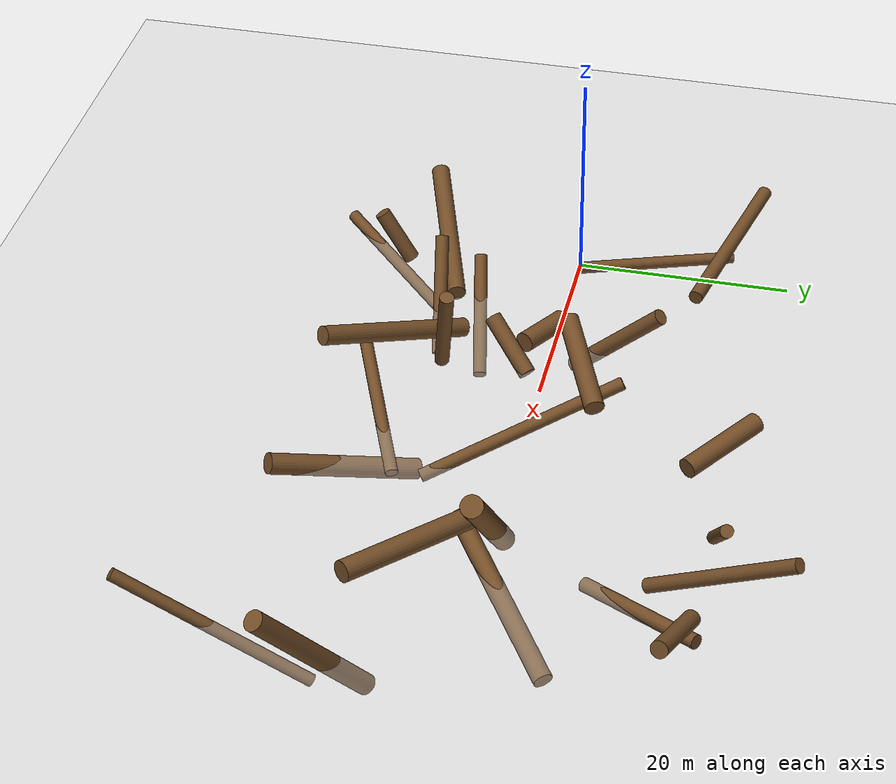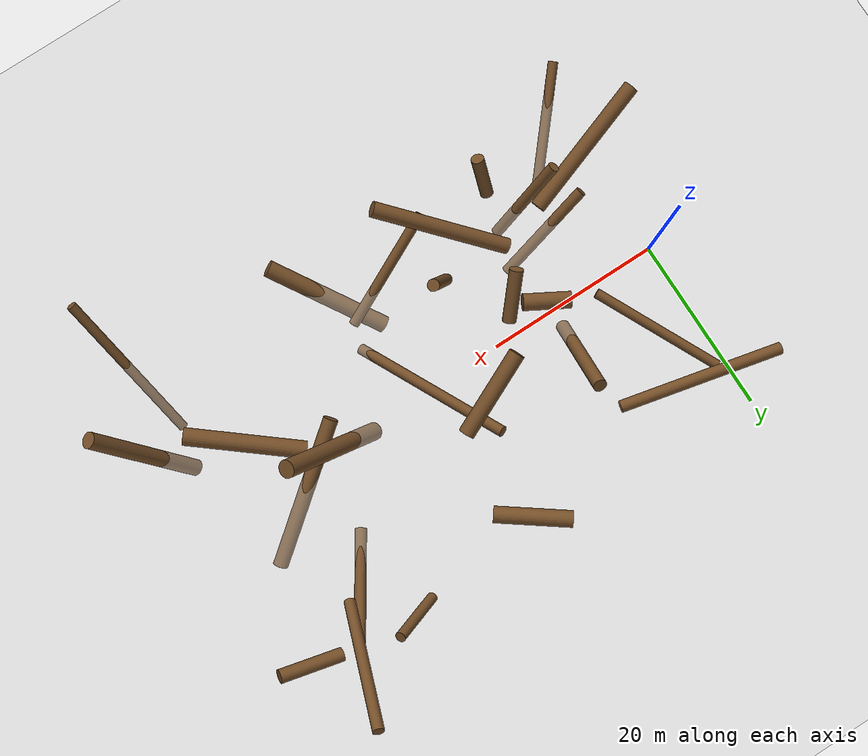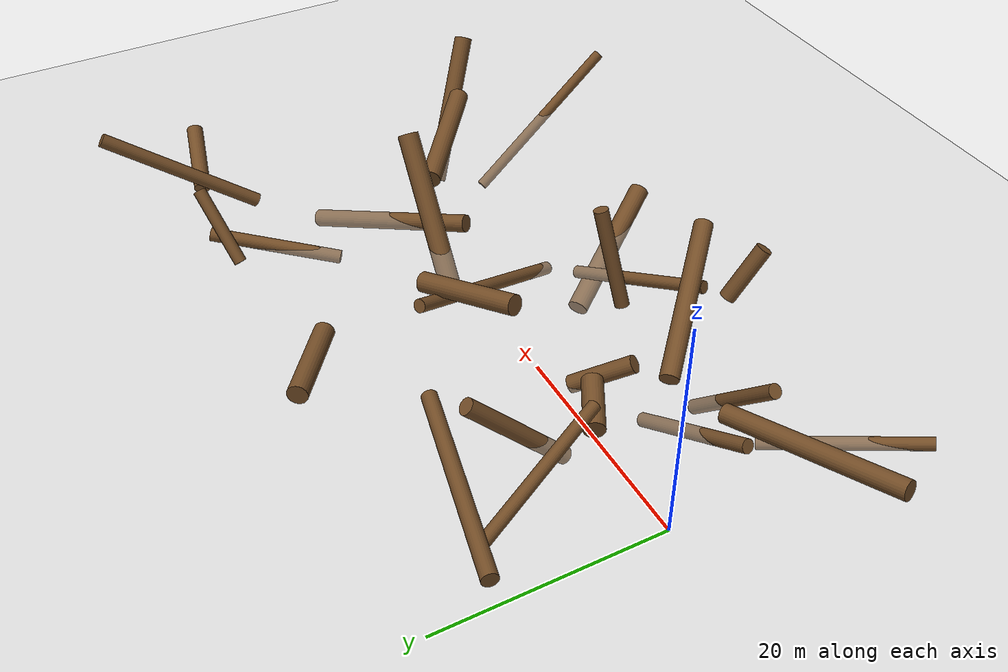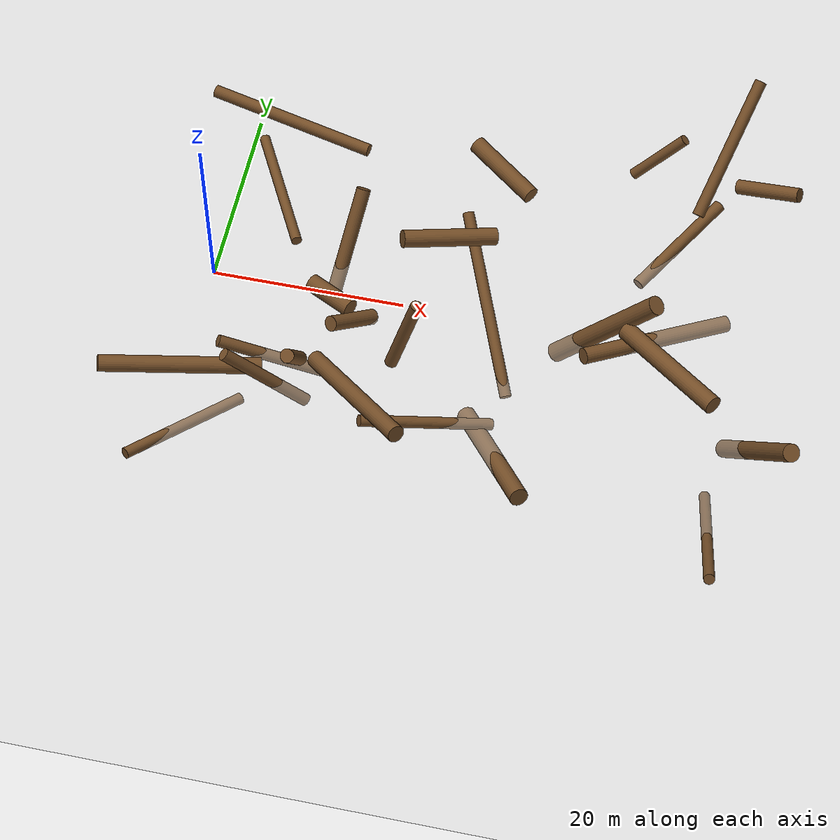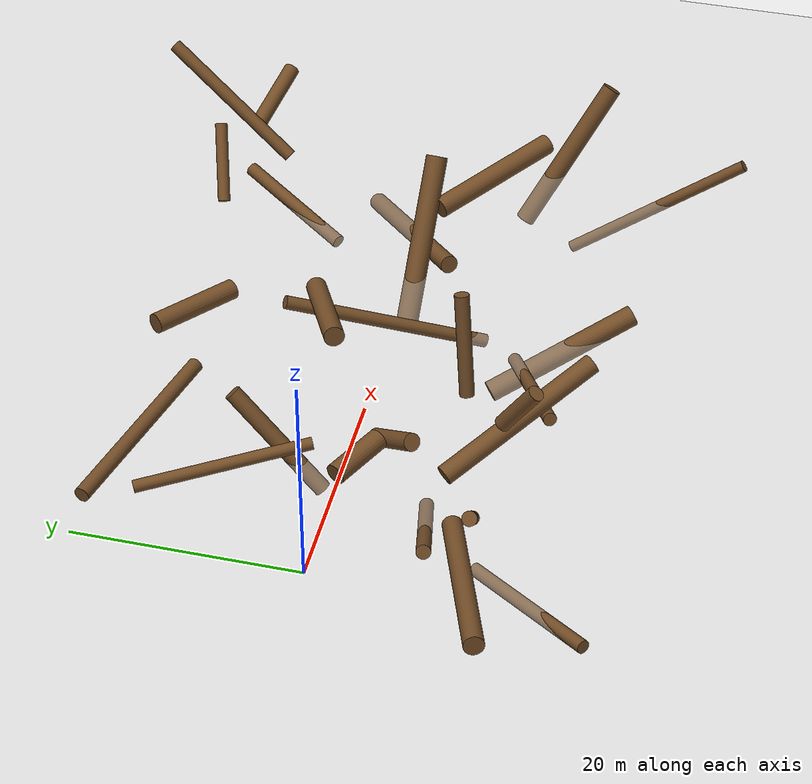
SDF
<sdf version='1.7'>
            <world name='default'>
                <light name='sun' type='directional'>
                <cast_shadows>1</cast_shadows>
                <pose>0 0 10 0 -0 0</pose>
                <diffuse>0.8 0.8 0.8 1</diffuse>
                <specular>0.2 0.2 0.2 1</specular>
                <attenuation>
                    <range>1000</range>
                    <constant>0.9</constant>
                    <linear>0.01</linear>
                    <quadratic>0.001</quadratic>
                </attenuation>
                <direction>-0.5 0.1 -0.9</direction>
                <spot>
                    <inner_angle>0</inner_angle>
                    <outer_angle>0</outer_angle>
                    <falloff>0</falloff>
                </spot>
                </light>
                <model name='ground_plane'>
                <static>1</static>
                <link name='link'>
                    <collision name='collision'>
                    <geometry>
                        <plane>
                        <normal>0 0 1</normal>
                        <size>100 100</size>
                        </plane>
                    </geometry>
                    <surface>
                        <contact>
                        <collide_bitmask>65535</collide_bitmask>
                        <ode/>
                        </contact>
                        <friction>
                        <ode>
                            <mu>100</mu>
                            <mu2>50</mu2>
                        </ode>
                        <torsional>
                            <ode/>
                        </torsional>
                        </friction>
                        <bounce/>
                    </surface>
                    <max_contacts>10</max_contacts>
                    </collision>
                    <visual name='visual'>
                    <cast_shadows>0</cast_shadows>
                    <geometry>
                        <plane>
                        <normal>0 0 1</normal>
                        <size>100 100</size>
                        </plane>
                    </geometry>
                    <material>
                        <script>
                        <uri>file://media/materials/scripts/gazebo.material</uri>
                        <name>Gazebo/Grey</name>
                        </script>
                    </material>
                    </visual>
                    <self_collide>0</self_collide>
                    <enable_wind>0</enable_wind>
                    <kinematic>0</kinematic>
                </link>
                </model>
                <gravity>0 0 -9.8</gravity>
                <magnetic_field>6e-06 2.3e-05 -4.2e-05</magnetic_field>
                <atmosphere type='adiabatic'/>
                <physics type='ode'>
                <max_step_size>0.001</max_step_size>
                <real_time_factor>1</real_time_factor>
                <real_time_update_rate>1000</real_time_update_rate>
                </physics>
                <scene>
                <ambient>0.4 0.4 0.4 1</ambient>
                <background>0.7 0.7 0.7 1</background>
                <shadows>1</shadows>
                </scene>
                <wind/>
                <spherical_coordinates>
                <surface_model>EARTH_WGS84</surface_model>
                <latitude_deg>0</latitude_deg>
                <longitude_deg>0</longitude_deg>
                <elevation>0</elevation>
                <heading_deg>0</heading_deg>
                </spherical_coordinates>
                <model name='cylinder_1'>
      <static>1</static>
      <link name='link'>
        <pose frame=''>0 0 0.1 0 -0 0</pose>
        <collision name='collision_trunk'>
          <pose frame=''>0 0 2 0 -0 0</pose>
          <geometry>
            <cylinder>
              <radius>0.5336957871509185</radius>
              <length>14.95655123803418</length>
            </cylinder>
          </geometry>
        </collision>
        <visual name='trunk'>
          <pose frame=''>0 0 2 0 -0 0</pose>
          <geometry>
            <cylinder>
              <radius>0.5336957871509185</radius>
              <length>14.95655123803418</length>
            </cylinder>
          </geometry>
          <material>
            <script>
              <uri>model://tree_simple/scripts</uri>
              <uri>model://tree_simple/materials/textures</uri>
              <name>TreeSimple/Trunk</name>
            </script>
          </material>
        </visual>
        <self_collide>0</self_collide>
        <kinematic>0</kinematic>
      </link>
      <pose frame=''>4.389438865366204 9.983459376822292 5.090579179086507 112.29295795461954 139.65174429482894 167.73612626751432</pose>
    </model>
    <model name='cylinder_2'>
      <static>1</static>
      <link name='link'>
        <pose frame=''>0 0 0.1 0 -0 0</pose>
        <collision name='collision_trunk'>
          <pose frame=''>0 0 2 0 -0 0</pose>
          <geometry>
            <cylinder>
              <radius>0.6210751342093332</radius>
          <length>15.111597772870141</length>
            </cylinder>
          </geometry>
        </collision>
        <visual name='trunk'>
          <pose frame=''>0 0 2 0 -0 0</pose>
          <geometry>
            <cylinder>
              <radius>0.6210751342093332</radius>
          <length>15.111597772870141</length>
            </cylinder>
          </geometry>
          <material>
            <script>
              <uri>model://tree_simple/scripts</uri>
              <uri>model://tree_simple/materials/textures</uri>
              <name>TreeSimple/Trunk</name>
            </script>
          </material>
        </visual>
        <self_collide>0</self_collide>
        <kinematic>0</kinematic>
      </link>
      <pose frame=''>49.390588769567934 18.767132477890087 7.431629227690802 11.836912022812934 138.99838150773255 19.19570992128755</pose>
    </model>
    <model name='cylinder_3'>
      <static>1</static>
      <link name='link'>
        <pose frame=''>0 0 0.1 0 -0 0</pose>
        <collision name='collision_trunk'>
          <pose frame=''>0 0 2 0 -0 0</pose>
          <geometry>
            <cylinder>
              <radius>0.5917475191660263</radius>
          <length>19.448466482776425</length>
            </cylinder>
          </geometry>
        </collision>
        <visual name='trunk'>
          <pose frame=''>0 0 2 0 -0 0</pose>
          <geometry>
            <cylinder>
              <radius>0.5917475191660263</radius>
          <length>19.448466482776425</length>
            </cylinder>
          </geometry>
          <material>
            <script>
              <uri>model://tree_simple/scripts</uri>
              <uri>model://tree_simple/materials/textures</uri>
              <name>TreeSimple/Trunk</name>
            </script>
          </material>
        </visual>
        <self_collide>0</self_collide>
        <kinematic>0</kinematic>
      </link>
      <pose frame=''>29.542091574596924 -1.6056987435699277 1.850906706487004 64.98932515987408 85.63628053727717 179.04154035359613</pose>
    </model>
    <model name='cylinder_4'>
      <static>1</static>
      <link name='link'>
        <pose frame=''>0 0 0.1 0 -0 0</pose>
        <collision name='collision_trunk'>
          <pose frame=''>0 0 2 0 -0 0</pose>
          <geometry>
            <cylinder>
              <radius>0.8949425350888136</radius>
          <length>9.95805217823374</length>
            </cylinder>
          </geometry>
        </collision>
        <visual name='trunk'>
          <pose frame=''>0 0 2 0 -0 0</pose>
          <geometry>
            <cylinder>
              <radius>0.8949425350888136</radius>
          <length>9.95805217823374</length>
            </cylinder>
          </geometry>
          <material>
            <script>
              <uri>model://tree_simple/scripts</uri>
              <uri>model://tree_simple/materials/textures</uri>
              <name>TreeSimple/Trunk</name>
            </script>
          </material>
        </visual>
        <self_collide>0</self_collide>
        <kinematic>0</kinematic>
      </link>
      <pose frame=''>25.78942668550151 5.309318369829732  6.520487619423577 4.970352736503171 81.37281685837898 152.71490130396975</pose>
    </model>
    <model name='cylinder_5'>
      <static>1</static>
      <link name='link'>
        <pose frame=''>0 0 0.1 0 -0 0</pose>
        <collision name='collision_trunk'>
          <pose frame=''>0 0 2 0 -0 0</pose>
          <geometry>
            <cylinder>
              <radius>0.6988221408428659</radius>
          <length>5.110644961078928</length>
            </cylinder>
          </geometry>
        </collision>
        <visual name='trunk'>
          <pose frame=''>0 0 2 0 -0 0</pose>
          <geometry>
            <cylinder>
              <radius>0.6988221408428659</radius>
          <length>5.110644961078928</length>
            </cylinder>
          </geometry>
          <material>
            <script>
              <uri>model://tree_simple/scripts</uri>
              <uri>model://tree_simple/materials/textures</uri>
              <name>TreeSimple/Trunk</name>
            </script>
          </material>
        </visual>
        <self_collide>0</self_collide>
        <kinematic>0</kinematic>
      </link>
      <pose frame=''>12.761631672051045 -13.72672082016928 8.18952264180452 28.842621070981163 9.505917111483855 116.2160552934608</pose>
    </model>
    <model name='cylinder_6'>
      <static>1</static>
      <link name='link'>
        <pose frame=''>0 0 0.1 0 -0 0</pose>
        <collision name='collision_trunk'>
          <pose frame=''>0 0 2 0 -0 0</pose>
          <geometry>
            <cylinder>
              <radius>0.8815207074208944</radius>
          <length>15.910779967703808</length>
            </cylinder>
          </geometry>
        </collision>
        <visual name='trunk'>
          <pose frame=''>0 0 2 0 -0 0</pose>
          <geometry>
            <cylinder>
              <radius>0.8815207074208944</radius>
          <length>15.910779967703808</length>
            </cylinder>
          </geometry>
          <material>
            <script>
              <uri>model://tree_simple/scripts</uri>
              <uri>model://tree_simple/materials/textures</uri>
              <name>TreeSimple/Trunk</name>
            </script>
          </material>
        </visual>
        <self_collide>0</self_collide>
        <kinematic>0</kinematic>
      </link>
      <pose frame=''>16.86450269986587 -12.463431435358538 2.65062039727262 33.75686090019933 152.87528933666846 7.790752885590367</pose>
    </model>
    <model name='cylinder_7'>
      <static>1</static>
      <link name='link'>
        <pose frame=''>0 0 0.1 0 -0 0</pose>
        <collision name='collision_trunk'>
          <pose frame=''>0 0 2 0 -0 0</pose>
          <geometry>
            <cylinder>
              <radius>0.9425478477149085</radius>
          <length>5.315506007943979</length>
            </cylinder>
          </geometry>
        </collision>
        <visual name='trunk'>
          <pose frame=''>0 0 2 0 -0 0</pose>
          <geometry>
            <cylinder>
              <radius>0.9425478477149085</radius>
          <length>5.315506007943979</length>
            </cylinder>
          </geometry>
          <material>
            <script>
              <uri>model://tree_simple/scripts</uri>
              <uri>model://tree_simple/materials/textures</uri>
              <name>TreeSimple/Trunk</name>
            </script>
          </material>
        </visual>
        <self_collide>0</self_collide>
        <kinematic>0</kinematic>
      </link>
      <pose frame=''>10.94463003330917 -0.13657057204664724 1.174833280945304 142.2834220793592 54.85723094777119 149.37627507793877</pose>
    </model>
    <model name='cylinder_8'>
      <static>1</static>
      <link name='link'>
        <pose frame=''>0 0 0.1 0 -0 0</pose>
        <collision name='collision_trunk'>
          <pose frame=''>0 0 2 0 -0 0</pose>
          <geometry>
            <cylinder>
              <radius>0.766734835028546</radius>
          <length>9.369823039276342</length>
            </cylinder>
          </geometry>
        </collision>
        <visual name='trunk'>
          <pose frame=''>0 0 2 0 -0 0</pose>
          <geometry>
            <cylinder>
              <radius>0.6527019407023971</radius>
          <length>9.369823039276342</length>
            </cylinder>
          </geometry>
          <material>
            <script>
              <uri>model://tree_simple/scripts</uri>
              <uri>model://tree_simple/materials/textures</uri>
              <name>TreeSimple/Trunk</name>
            </script>
          </material>
        </visual>
        <self_collide>0</self_collide>
        <kinematic>0</kinematic>
      </link>
      <pose frame=''>21.503323633481465  -8.52585822621606 5.298537196921028 81.9439636382597 138.37093238130925 95.7703847736654</pose>
    </model>
    <model name='cylinder_9'>
      <static>1</static>
      <link name='link'>
        <pose frame=''>0 0 0.1 0 -0 0</pose>
        <collision name='collision_trunk'>
          <pose frame=''>0 0 2 0 -0 0</pose>
          <geometry>
            <cylinder>
              <radius>0.9987053468332003</radius>
          <length>15.698710856696078</length>
            </cylinder>
          </geometry>
        </collision>
        <visual name='trunk'>
          <pose frame=''>0 0 2 0 -0 0</pose>
          <geometry>
            <cylinder>
              <radius>0.9987053468332003</radius>
          <length>15.698710856696078</length>
            </cylinder>
          </geometry>
          <material>
            <script>
              <uri>model://tree_simple/scripts</uri>
              <uri>model://tree_simple/materials/textures</uri>
              <name>TreeSimple/Trunk</name>
            </script>
          </material>
        </visual>
        <self_collide>0</self_collide>
        <kinematic>0</kinematic>
      </link>
      <pose frame=''>39.683731303623894 -0.05895751570090724 0.7436489372433499 93.56195457769012 157.07629130448257 174.30413325754532</pose>
    </model>
    <model name='cylinder_10'>
      <static>1</static>
      <link name='link'>
        <pose frame=''>0 0 0.1 0 -0 0</pose>
        <collision name='collision_trunk'>
          <pose frame=''>0 0 2 0 -0 0</pose>
          <geometry>
            <cylinder>
              <radius>0.642386395974393</radius>
          <length>17.67586941845408</length>
            </cylinder>
          </geometry>
        </collision>
        <visual name='trunk'>
          <pose frame=''>0 0 2 0 -0 0</pose>
          <geometry>
            <cylinder>
              <radius>0.642386395974393</radius>
          <length>17.67586941845408</length>
            </cylinder>
          </geometry>
          <material>
            <script>
              <uri>model://tree_simple/scripts</uri>
              <uri>model://tree_simple/materials/textures</uri>
              <name>TreeSimple/Trunk</name>
            </script>
          </material>
        </visual>
        <self_collide>0</self_collide>
        <kinematic>0</kinematic>
      </link>
      <pose frame=''>7.083837933914201 14.405658420585063 8.192504421045491 111.49124454697022 65.22708051638408 170.96745397372882</pose>
    </model>
    <model name='cylinder_11'>
      <static>1</static>
      <link name='link'>
        <pose frame=''>0 0 0.1 0 -0 0</pose>
        <collision name='collision_trunk'>
          <pose frame=''>0 0 2 0 -0 0</pose>
          <geometry>
            <cylinder>
              <radius>0.7442069061516609</radius>
          <length>11.527162196403726</length>
            </cylinder>
          </geometry>
        </collision>
        <visual name='trunk'>
          <pose frame=''>0 0 2 0 -0 0</pose>
          <geometry>
            <cylinder>
              <radius>0.7442069061516609</radius>
          <length>11.527162196403726</length>
            </cylinder>
          </geometry>
          <material>
            <script>
              <uri>model://tree_simple/scripts</uri>
              <uri>model://tree_simple/materials/textures</uri>
              <name>TreeSimple/Trunk</name>
            </script>
          </material>
        </visual>
        <self_collide>0</self_collide>
        <kinematic>0</kinematic>
      </link>
      <pose frame=''>12.68598045013778 4.31807881292222 -0.04796264546697593 124.88760261415344 125.45221328232427 156.67838205440114</pose>
    </model>
        <model name='cylinder_12'>
      <static>1</static>
      <link name='link'>
        <pose frame=''>0 0 0.1 0 -0 0</pose>
        <collision name='collision_trunk'>
          <pose frame=''>0 0 2 0 -0 0</pose>
          <geometry>
            <cylinder>
              <radius>0.9536152714982249</radius>
          <length>12.942819767681645</length>
            </cylinder>
          </geometry>
        </collision>
        <visual name='trunk'>
          <pose frame=''>0 0 2 0 -0 0</pose>
          <geometry>
            <cylinder>
              <radius>0.9536152714982249</radius>
          <length>12.942819767681645</length>
            </cylinder>
          </geometry>
          <material>
            <script>
              <uri>model://tree_simple/scripts</uri>
              <uri>model://tree_simple/materials/textures</uri>
              <name>TreeSimple/Trunk</name>
            </script>
          </material>
        </visual>
        <self_collide>0</self_collide>
        <kinematic>0</kinematic>
      </link>
      <pose frame=''>46.63724732282327 -4.034176819753288 5.158820663588779 64.54709550600356 35.181432459902034 44.791473317168546</pose>
    </model>
    <model name='cylinder_13'>
      <static>1</static>
      <link name='link'>
        <pose frame=''>0 0 0.1 0 -0 0</pose>
        <collision name='collision_trunk'>
          <pose frame=''>0 0 2 0 -0 0</pose>
          <geometry>
            <cylinder>
              <radius>0.6365701566541591</radius>
          <length>11.178123468877041</length>
            </cylinder>
          </geometry>
        </collision>
        <visual name='trunk'>
          <pose frame=''>0 0 2 0 -0 0</pose>
          <geometry>
            <cylinder>
              <radius>0.6365701566541591</radius>
          <length>11.178123468877041</length>
            </cylinder>
          </geometry>
          <material>
            <script>
              <uri>model://tree_simple/scripts</uri>
              <uri>model://tree_simple/materials/textures</uri>
              <name>TreeSimple/Trunk</name>
            </script>
          </material>
        </visual>
        <self_collide>0</self_collide>
        <kinematic>0</kinematic>
      </link>
      <pose frame=''>7.028380090893651 -12.156496196047911 2.2043578749703077 123.2703257628142 88.22086486189839 73.7338322272382</pose>
    </model>
    <model name='cylinder_14'>
      <static>1</static>
      <link name='link'>
        <pose frame=''>0 0 0.1 0 -0 0</pose>
        <collision name='collision_trunk'>
          <pose frame=''>0 0 2 0 -0 0</pose>
          <geometry>
            <cylinder>
              <radius>0.5839995288169264</radius>
          <length>14.326536216539287</length>
            </cylinder>
          </geometry>
        </collision>
        <visual name='trunk'>
          <pose frame=''>0 0 2 0 -0 0</pose>
          <geometry>
            <cylinder>
              <radius>0.5839995288169264</radius>
          <length>14.326536216539287</length>
            </cylinder>
          </geometry>
          <material>
            <script>
              <uri>model://tree_simple/scripts</uri>
              <uri>model://tree_simple/materials/textures</uri>
              <name>TreeSimple/Trunk</name>
            </script>
          </material>
        </visual>
        <self_collide>0</self_collide>
        <kinematic>0</kinematic>
      </link>
      <pose frame=''>23.615415818139084 -14.44819575387208 1.2371798442275814 82.1684231716186 121.35434932607023 57.48654993374189</pose>
    </model>
    <model name='cylinder_15'>
      <static>1</static>
      <link name='link'>
        <pose frame=''>0 0 0.1 0 -0 0</pose>
        <collision name='collision_trunk'>
          <pose frame=''>0 0 2 0 -0 0</pose>
          <geometry>
            <cylinder>
              <radius>0.5491016147414786</radius>
          <length>19.22250790482952</length>
            </cylinder>
          </geometry>
        </collision>
        <visual name='trunk'>
          <pose frame=''>0 0 2 0 -0 0</pose>
          <geometry>
            <cylinder>
              <radius>0.5491016147414786</radius>
          <length>19.22250790482952</length>
            </cylinder>
          </geometry>
          <material>
            <script>
              <uri>model://tree_simple/scripts</uri>
              <uri>model://tree_simple/materials/textures</uri>
              <name>TreeSimple/Trunk</name>
            </script>
          </material>
        </visual>
        <self_collide>0</self_collide>
        <kinematic>0</kinematic>
      </link>
      <pose frame=''>54.6472997224906 -18.340316232435924 -1.889864256976205 105.94259172595912 169.1642155787489 166.2749372786003</pose>
    </model>
    <model name='cylinder_100'>
      <static>1</static>
      <link name='link'>
        <pose frame=''>0 0 0.1 0 -0 0</pose>
        <collision name='collision_trunk'>
          <pose frame=''>0 0 2 0 -0 0</pose>
          <geometry>
            <cylinder>
              <radius>0.745648404</radius>
              <length>6.9851246014</length>
            </cylinder>
          </geometry>
        </collision>
        <visual name='trunk'>
          <pose frame=''>0 0 2 0 -0 0</pose>
          <geometry>
            <cylinder>
              <radius>0.745648404</radius>
              <length>6.9851246014</length>
            </cylinder>
          </geometry>
          <material>
            <script>
              <uri>model://tree_simple/scripts</uri>
              <uri>model://tree_simple/materials/textures</uri>
              <name>TreeSimple/Trunk</name>
            </script>
          </material>
        </visual>
        <self_collide>0</self_collide>
        <kinematic>0</kinematic>
      </link>
      <pose frame=''>56.5784172967 17.2075062607 6.9407474744 30.7453823954 278.4795397327 146.6829030278</pose>
    </model>

<model name='cylinder_101'>
      <static>1</static>
      <link name='link'>
        <pose frame=''>0 0 0.1 0 -0 0</pose>
        <collision name='collision_trunk'>
          <pose frame=''>0 0 2 0 -0 0</pose>
          <geometry>
            <cylinder>
              <radius>0.9068858043</radius>
              <length>15.4223187761</length>
            </cylinder>
          </geometry>
        </collision>
        <visual name='trunk'>
          <pose frame=''>0 0 2 0 -0 0</pose>
          <geometry>
            <cylinder>
              <radius>0.9068858043</radius>
              <length>15.4223187761</length>
            </cylinder>
          </geometry>
          <material>
            <script>
              <uri>model://tree_simple/scripts</uri>
              <uri>model://tree_simple/materials/textures</uri>
              <name>TreeSimple/Trunk</name>
            </script>
          </material>
        </visual>
        <self_collide>0</self_collide>
        <kinematic>0</kinematic>
      </link>
      <pose frame=''>57.2735334183 -9.7748190286 -0.0858352438 85.283156111 47.6273515516 117.7889299312</pose>
    </model>

<model name='cylinder_102'>
      <static>1</static>
      <link name='link'>
        <pose frame=''>0 0 0.1 0 -0 0</pose>
        <collision name='collision_trunk'>
          <pose frame=''>0 0 2 0 -0 0</pose>
          <geometry>
            <cylinder>
              <radius>0.6182622043</radius>
              <length>12.4151260092</length>
            </cylinder>
          </geometry>
        </collision>
        <visual name='trunk'>
          <pose frame=''>0 0 2 0 -0 0</pose>
          <geometry>
            <cylinder>
              <radius>0.6182622043</radius>
              <length>12.4151260092</length>
            </cylinder>
          </geometry>
          <material>
            <script>
              <uri>model://tree_simple/scripts</uri>
              <uri>model://tree_simple/materials/textures</uri>
              <name>TreeSimple/Trunk</name>
            </script>
          </material>
        </visual>
        <self_collide>0</self_collide>
        <kinematic>0</kinematic>
      </link>
      <pose frame=''>6.5308058946 -8.4582687121 -0.200381094 100.2905022279 261.8303205115 97.8644075515</pose>
    </model>

<model name='cylinder_103'>
      <static>1</static>
      <link name='link'>
        <pose frame=''>0 0 0.1 0 -0 0</pose>
        <collision name='collision_trunk'>
          <pose frame=''>0 0 2 0 -0 0</pose>
          <geometry>
            <cylinder>
              <radius>0.5634224508</radius>
              <length>7.2353849268</length>
            </cylinder>
          </geometry>
        </collision>
        <visual name='trunk'>
          <pose frame=''>0 0 2 0 -0 0</pose>
          <geometry>
            <cylinder>
              <radius>0.5634224508</radius>
              <length>7.2353849268</length>
            </cylinder>
          </geometry>
          <material>
            <script>
              <uri>model://tree_simple/scripts</uri>
              <uri>model://tree_simple/materials/textures</uri>
              <name>TreeSimple/Trunk</name>
            </script>
          </material>
        </visual>
        <self_collide>0</self_collide>
        <kinematic>0</kinematic>
      </link>
      <pose frame=''>44.3328441663 19.8780436101 8.0367722529 349.4562153195 301.3420205368 303.72424091</pose>
    </model>

<model name='cylinder_104'>
      <static>1</static>
      <link name='link'>
        <pose frame=''>0 0 0.1 0 -0 0</pose>
        <collision name='collision_trunk'>
          <pose frame=''>0 0 2 0 -0 0</pose>
          <geometry>
            <cylinder>
              <radius>0.7855173106</radius>
              <length>6.1557865281</length>
            </cylinder>
          </geometry>
        </collision>
        <visual name='trunk'>
          <pose frame=''>0 0 2 0 -0 0</pose>
          <geometry>
            <cylinder>
              <radius>0.7855173106</radius>
              <length>6.1557865281</length>
            </cylinder>
          </geometry>
          <material>
            <script>
              <uri>model://tree_simple/scripts</uri>
              <uri>model://tree_simple/materials/textures</uri>
              <name>TreeSimple/Trunk</name>
            </script>
          </material>
        </visual>
        <self_collide>0</self_collide>
        <kinematic>0</kinematic>
      </link>
      <pose frame=''>14.3828716126 -5.0249616105 2.4524893429 274.3149211448 226.1871382925 11.8694810589</pose>
    </model>

<model name='cylinder_105'>
      <static>1</static>
      <link name='link'>
        <pose frame=''>0 0 0.1 0 -0 0</pose>
        <collision name='collision_trunk'>
          <pose frame=''>0 0 2 0 -0 0</pose>
          <geometry>
            <cylinder>
              <radius>0.861698276</radius>
              <length>16.4254793024</length>
            </cylinder>
          </geometry>
        </collision>
        <visual name='trunk'>
          <pose frame=''>0 0 2 0 -0 0</pose>
          <geometry>
            <cylinder>
              <radius>0.861698276</radius>
              <length>16.4254793024</length>
            </cylinder>
          </geometry>
          <material>
            <script>
              <uri>model://tree_simple/scripts</uri>
              <uri>model://tree_simple/materials/textures</uri>
              <name>TreeSimple/Trunk</name>
            </script>
          </material>
        </visual>
        <self_collide>0</self_collide>
        <kinematic>0</kinematic>
      </link>
      <pose frame=''>1.976248867 -12.4218356895 1.7071841265 274.0872180997 274.6146649557 191.1712528564</pose>
    </model>

<model name='cylinder_106'>
      <static>1</static>
      <link name='link'>
        <pose frame=''>0 0 0.1 0 -0 0</pose>
        <collision name='collision_trunk'>
          <pose frame=''>0 0 2 0 -0 0</pose>
          <geometry>
            <cylinder>
              <radius>0.6341212882</radius>
              <length>12.4913045573</length>
            </cylinder>
          </geometry>
        </collision>
        <visual name='trunk'>
          <pose frame=''>0 0 2 0 -0 0</pose>
          <geometry>
            <cylinder>
              <radius>0.6341212882</radius>
              <length>12.4913045573</length>
            </cylinder>
          </geometry>
          <material>
            <script>
              <uri>model://tree_simple/scripts</uri>
              <uri>model://tree_simple/materials/textures</uri>
              <name>TreeSimple/Trunk</name>
            </script>
          </material>
        </visual>
        <self_collide>0</self_collide>
        <kinematic>0</kinematic>
      </link>
      <pose frame=''>47.5285996819 15.3911413117 0.2381864743 151.4781548445 271.9430626219 243.5903811259</pose>
    </model>

<model name='cylinder_107'>
      <static>1</static>
      <link name='link'>
        <pose frame=''>0 0 0.1 0 -0 0</pose>
        <collision name='collision_trunk'>
          <pose frame=''>0 0 2 0 -0 0</pose>
          <geometry>
            <cylinder>
              <radius>0.9144896829</radius>
              <length>8.4532174132</length>
            </cylinder>
          </geometry>
        </collision>
        <visual name='trunk'>
          <pose frame=''>0 0 2 0 -0 0</pose>
          <geometry>
            <cylinder>
              <radius>0.9144896829</radius>
              <length>8.4532174132</length>
            </cylinder>
          </geometry>
          <material>
            <script>
              <uri>model://tree_simple/scripts</uri>
              <uri>model://tree_simple/materials/textures</uri>
              <name>TreeSimple/Trunk</name>
            </script>
          </material>
        </visual>
        <self_collide>0</self_collide>
        <kinematic>0</kinematic>
      </link>
      <pose frame=''>25.295000259 18.7473186469 2.6333785784 87.0591270952 167.9705480349 160.4929335964</pose>
    </model>

<model name='cylinder_108'>
      <static>1</static>
      <link name='link'>
        <pose frame=''>0 0 0.1 0 -0 0</pose>
        <collision name='collision_trunk'>
          <pose frame=''>0 0 2 0 -0 0</pose>
          <geometry>
            <cylinder>
              <radius>0.5675509613</radius>
              <length>14.0965602561</length>
            </cylinder>
          </geometry>
        </collision>
        <visual name='trunk'>
          <pose frame=''>0 0 2 0 -0 0</pose>
          <geometry>
            <cylinder>
              <radius>0.5675509613</radius>
              <length>14.0965602561</length>
            </cylinder>
          </geometry>
          <material>
            <script>
              <uri>model://tree_simple/scripts</uri>
              <uri>model://tree_simple/materials/textures</uri>
              <name>TreeSimple/Trunk</name>
            </script>
          </material>
        </visual>
        <self_collide>0</self_collide>
        <kinematic>0</kinematic>
      </link>
      <pose frame=''>2.8532648849 -16.5409281477 -1.4791044037 218.679119631 0.8863924122 109.5206076902</pose>
    </model>

<model name='cylinder_109'>
      <static>1</static>
      <link name='link'>
        <pose frame=''>0 0 0.1 0 -0 0</pose>
        <collision name='collision_trunk'>
          <pose frame=''>0 0 2 0 -0 0</pose>
          <geometry>
            <cylinder>
              <radius>0.8359693573</radius>
              <length>17.2770202533</length>
            </cylinder>
          </geometry>
        </collision>
        <visual name='trunk'>
          <pose frame=''>0 0 2 0 -0 0</pose>
          <geometry>
            <cylinder>
              <radius>0.8359693573</radius>
              <length>17.2770202533</length>
            </cylinder>
          </geometry>
          <material>
            <script>
              <uri>model://tree_simple/scripts</uri>
              <uri>model://tree_simple/materials/textures</uri>
              <name>TreeSimple/Trunk</name>
            </script>
          </material>
        </visual>
        <self_collide>0</self_collide>
        <kinematic>0</kinematic>
      </link>
      <pose frame=''>44.3834828066 0.7130500904 -0.3785619095 319.4663003959 60.7739475918 218.4504130175</pose>
    </model>

<model name='cylinder_110'>
      <static>1</static>
      <link name='link'>
        <pose frame=''>0 0 0.1 0 -0 0</pose>
        <collision name='collision_trunk'>
          <pose frame=''>0 0 2 0 -0 0</pose>
          <geometry>
            <cylinder>
              <radius>0.9455601875</radius>
              <length>14.5639273031</length>
            </cylinder>
          </geometry>
        </collision>
        <visual name='trunk'>
          <pose frame=''>0 0 2 0 -0 0</pose>
          <geometry>
            <cylinder>
              <radius>0.9455601875</radius>
              <length>14.5639273031</length>
            </cylinder>
          </geometry>
          <material>
            <script>
              <uri>model://tree_simple/scripts</uri>
              <uri>model://tree_simple/materials/textures</uri>
              <name>TreeSimple/Trunk</name>
            </script>
          </material>
        </visual>
        <self_collide>0</self_collide>
        <kinematic>0</kinematic>
      </link>
      <pose frame=''>33.5560906624 -16.6534983175 -0.4762018558 249.3971522533 176.2049301343 302.0833857751</pose>
    </model>
            </world>
            </sdf>
